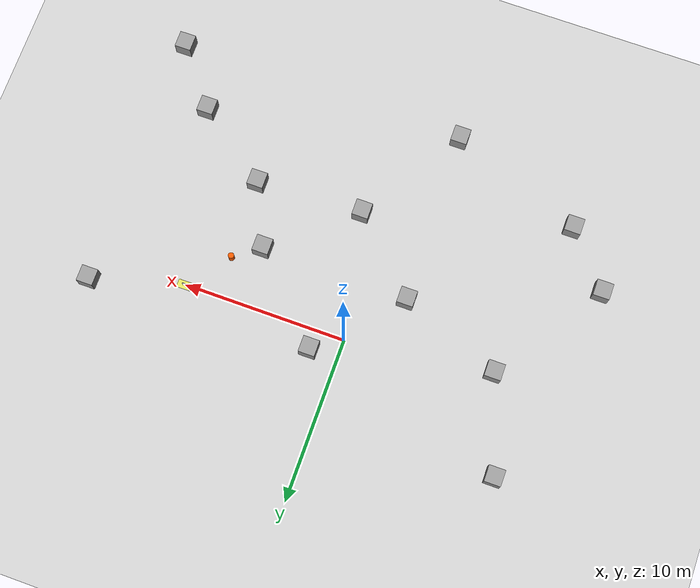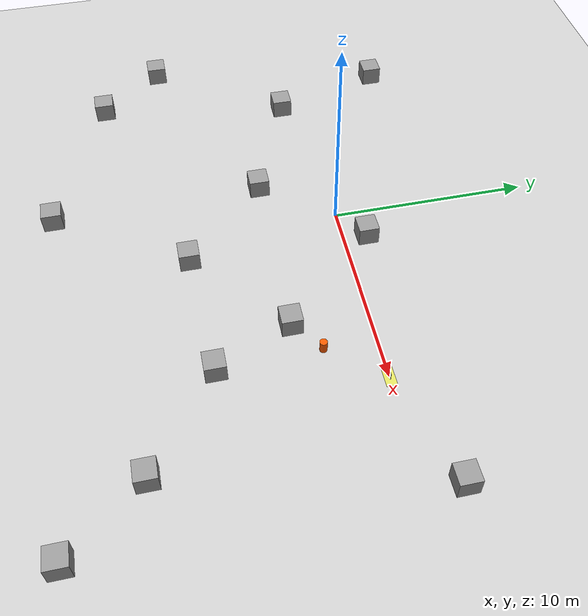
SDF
<sdf version="1.7">
 <world name="my_world">
  <model name="ground_plane">
   <static>1</static>
   <link name="link">
    <collision name="collision">
     <geometry><plane><normal>0 0 1</normal><size>100 100</size></plane></geometry>
     <surface>
      <contact><collide_bitmask>65535</collide_bitmask></contact>
      <friction><ode><mu>100</mu><mu2>50</mu2></ode></friction>
     </surface>
    </collision>
    <visual name="visual">
     <cast_shadows>0</cast_shadows>
     <geometry><plane><normal>0 0 1</normal><size>100 100</size></plane></geometry>
     <material>
      <script><uri>file://media/materials/scripts/gazebo.material</uri><name>Gazebo/Grey</name></script>
     </material>
    </visual>
   </link>
  </model>
  <model name="zone_b">
   <static>1</static>
   <pose>10 0 0.01 0 -0 0</pose>
   <link name="base">
    <visual name="visual">
     <geometry><box><size>1 0.5 0.02</size></box></geometry>
     <material><ambient>1 1 0 0.5</ambient><diffuse>1 1 0 0.5</diffuse></material>
    </visual>
   </link>
   <link name="letter_B_vertical_stroke">
    <pose>-0.1 0 0.2 0 -0 0</pose>
    <visual name="v">
     <geometry><box><size>0.04 0.04 0.4</size></box></geometry>
     <material><ambient>0 0 0 1</ambient><diffuse>0 0 0 1</diffuse></material>
    </visual>
   </link>
   <link name="letter_B_top_horizontal">
    <pose>0.05 0 0.38 0 -0 0</pose>
    <visual name="v">
     <geometry><box><size>0.25 0.04 0.04</size></box></geometry>
     <material><ambient>0 0 0 1</ambient><diffuse>0 0 0 1</diffuse></material>
    </visual>
   </link>
   <link name="letter_B_middle_horizontal">
    <pose>0.05 0 0.2 0 -0 0</pose>
    <visual name="v">
     <geometry><box><size>0.25 0.04 0.04</size></box></geometry>
     <material><ambient>0 0 0 1</ambient><diffuse>0 0 0 1</diffuse></material>
    </visual>
   </link>
   <link name="letter_B_bottom_horizontal">
    <pose>0.05 0 0.02 0 -0 0</pose>
    <visual name="v">
     <geometry><box><size>0.25 0.04 0.04</size></box></geometry>
     <material><ambient>0 0 0 1</ambient><diffuse>0 0 0 1</diffuse></material>
    </visual>
   </link>
   <link name="letter_B_top_vertical_stroke">
    <pose>0.15 0 0.29 0 -0 0</pose>
    <visual name="v">
     <geometry><box><size>0.04 0.04 0.2</size></box></geometry>
     <material><ambient>0 0 0 1</ambient><diffuse>0 0 0 1</diffuse></material>
    </visual>
   </link>
   <link name="letter_B_bottom_vertical_stroke">
    <pose>0.15 0 0.11 0 -0 0</pose>
    <visual name="v">
     <geometry><box><size>0.04 0.04 0.2</size></box></geometry>
     <material><ambient>0 0 0 1</ambient><diffuse>0 0 0 1</diffuse></material>
    </visual>
   </link>
  </model>
  <model name="Untitled">
   <link name="link_0">
    <inertial>
     <mass>1</mass>
     <inertia>
      <ixx>0.166667</ixx>
      <ixy>0</ixy>
      <ixz>0</ixz>
      <iyy>0.166667</iyy>
      <iyz>0</iyz>
      <izz>0.166667</izz>
     </inertia>
    </inertial>
    <pose>-11.7361 10.376 0 0 -0 0</pose>
    <visual name="visual">
     <geometry><box><size>1 1 1</size></box></geometry>
     <material>
      <lighting>1</lighting>
      <script><uri>file://media/materials/scripts/gazebo.material</uri><name>Gazebo/Grey</name></script>
      <shader type="pixel"/>
     </material>
    </visual>
    <collision name="collision">
     <geometry><box><size>1 1 1</size></box></geometry>
     <surface>
      <friction>
       <ode><mu>1</mu><mu2>1</mu2><fdir1>0 0 0</fdir1><slip1>0</slip1><slip2>0</slip2></ode>
       <torsional>
        <coefficient>1</coefficient>
        <patch_radius>0</patch_radius>
        <surface_radius>0</surface_radius>
        <use_patch_radius>1</use_patch_radius>
        <ode><slip>0</slip></ode>
       </torsional>
      </friction>
      <bounce><restitution_coefficient>0</restitution_coefficient><threshold>1e+06</threshold></bounce>
      <contact>
       <collide_without_contact>0</collide_without_contact>
       <collide_without_contact_bitmask>1</collide_without_contact_bitmask>
       <collide_bitmask>1</collide_bitmask>
       <ode>
        <soft_cfm>0</soft_cfm>
        <soft_erp>0.2</soft_erp>
        <kp>1e+13</kp>
        <kd>1</kd>
        <max_vel>0.01</max_vel>
        <min_depth>0</min_depth>
       </ode>
       <bullet>
        <split_impulse>1</split_impulse>
        <split_impulse_penetration_threshold>-0.01</split_impulse_penetration_threshold>
        <soft_cfm>0</soft_cfm>
        <soft_erp>0.2</soft_erp>
        <kp>1e+13</kp>
        <kd>1</kd>
       </bullet>
      </contact>
     </surface>
    </collision>
   </link>
   <link name="link_1">
    <inertial>
     <mass>1</mass>
     <inertia>
      <ixx>0.166667</ixx>
      <ixy>0</ixy>
      <ixz>0</ixz>
      <iyy>0.166667</iyy>
      <iyz>0</iyz>
      <izz>0.166667</izz>
     </inertia>
    </inertial>
    <pose>-9.86873 4.59948 0 0 -0 0</pose>
    <visual name="visual">
     <geometry><box><size>1 1 1</size></box></geometry>
     <material>
      <lighting>1</lighting>
      <script><uri>file://media/materials/scripts/gazebo.material</uri><name>Gazebo/Grey</name></script>
      <shader type="pixel"/>
     </material>
    </visual>
    <collision name="collision">
     <geometry><box><size>1 1 1</size></box></geometry>
     <surface>
      <friction>
       <ode><mu>1</mu><mu2>1</mu2><fdir1>0 0 0</fdir1><slip1>0</slip1><slip2>0</slip2></ode>
       <torsional>
        <coefficient>1</coefficient>
        <patch_radius>0</patch_radius>
        <surface_radius>0</surface_radius>
        <use_patch_radius>1</use_patch_radius>
        <ode><slip>0</slip></ode>
       </torsional>
      </friction>
      <bounce><restitution_coefficient>0</restitution_coefficient><threshold>1e+06</threshold></bounce>
      <contact>
       <collide_without_contact>0</collide_without_contact>
       <collide_without_contact_bitmask>1</collide_without_contact_bitmask>
       <collide_bitmask>1</collide_bitmask>
       <ode>
        <soft_cfm>0</soft_cfm>
        <soft_erp>0.2</soft_erp>
        <kp>1e+13</kp>
        <kd>1</kd>
        <max_vel>0.01</max_vel>
        <min_depth>0</min_depth>
       </ode>
       <bullet>
        <split_impulse>1</split_impulse>
        <split_impulse_penetration_threshold>-0.01</split_impulse_penetration_threshold>
        <soft_cfm>0</soft_cfm>
        <soft_erp>0.2</soft_erp>
        <kp>1e+13</kp>
        <kd>1</kd>
       </bullet>
      </contact>
     </surface>
    </collision>
   </link>
   <link name="link_10">
    <inertial>
     <mass>1</mass>
     <inertia>
      <ixx>0.166667</ixx>
      <ixy>0</ixy>
      <ixz>0</ixz>
      <iyy>0.166667</iyy>
      <iyz>0</iyz>
      <izz>0.166667</izz>
     </inertia>
    </inertial>
    <pose>11.7248 -5.10078 0 0 -0 0</pose>
    <visual name="visual">
     <geometry><box><size>1 1 1</size></box></geometry>
     <material>
      <lighting>1</lighting>
      <script><uri>file://media/materials/scripts/gazebo.material</uri><name>Gazebo/Grey</name></script>
      <shader type="pixel"/>
     </material>
    </visual>
    <collision name="collision">
     <geometry><box><size>1 1 1</size></box></geometry>
     <surface>
      <friction>
       <ode><mu>1</mu><mu2>1</mu2><fdir1>0 0 0</fdir1><slip1>0</slip1><slip2>0</slip2></ode>
       <torsional>
        <coefficient>1</coefficient>
        <patch_radius>0</patch_radius>
        <surface_radius>0</surface_radius>
        <use_patch_radius>1</use_patch_radius>
        <ode><slip>0</slip></ode>
       </torsional>
      </friction>
      <bounce><restitution_coefficient>0</restitution_coefficient><threshold>1e+06</threshold></bounce>
      <contact>
       <collide_without_contact>0</collide_without_contact>
       <collide_without_contact_bitmask>1</collide_without_contact_bitmask>
       <collide_bitmask>1</collide_bitmask>
       <ode>
        <soft_cfm>0</soft_cfm>
        <soft_erp>0.2</soft_erp>
        <kp>1e+13</kp>
        <kd>1</kd>
        <max_vel>0.01</max_vel>
        <min_depth>0</min_depth>
       </ode>
       <bullet>
        <split_impulse>1</split_impulse>
        <split_impulse_penetration_threshold>-0.01</split_impulse_penetration_threshold>
        <soft_cfm>0</soft_cfm>
        <soft_erp>0.2</soft_erp>
        <kp>1e+13</kp>
        <kd>1</kd>
       </bullet>
      </contact>
     </surface>
    </collision>
   </link>
   <link name="link_11">
    <inertial>
     <mass>1</mass>
     <inertia>
      <ixx>0.166667</ixx>
      <ixy>0</ixy>
      <ixz>0</ixz>
      <iyy>0.166667</iyy>
      <iyz>0</iyz>
      <izz>0.166667</izz>
     </inertia>
    </inertial>
    <pose>-3.47257 -8.45059 0 0 -0 0</pose>
    <visual name="visual">
     <geometry><box><size>1 1 1</size></box></geometry>
     <material>
      <lighting>1</lighting>
      <script><uri>file://media/materials/scripts/gazebo.material</uri><name>Gazebo/Grey</name></script>
      <shader type="pixel"/>
     </material>
    </visual>
    <collision name="collision">
     <geometry><box><size>1 1 1</size></box></geometry>
     <surface>
      <friction>
       <ode><mu>1</mu><mu2>1</mu2><fdir1>0 0 0</fdir1><slip1>0</slip1><slip2>0</slip2></ode>
       <torsional>
        <coefficient>1</coefficient>
        <patch_radius>0</patch_radius>
        <surface_radius>0</surface_radius>
        <use_patch_radius>1</use_patch_radius>
        <ode><slip>0</slip></ode>
       </torsional>
      </friction>
      <bounce><restitution_coefficient>0</restitution_coefficient><threshold>1e+06</threshold></bounce>
      <contact>
       <collide_without_contact>0</collide_without_contact>
       <collide_without_contact_bitmask>1</collide_without_contact_bitmask>
       <collide_bitmask>1</collide_bitmask>
       <ode>
        <soft_cfm>0</soft_cfm>
        <soft_erp>0.2</soft_erp>
        <kp>1e+13</kp>
        <kd>1</kd>
        <max_vel>0.01</max_vel>
        <min_depth>0</min_depth>
       </ode>
       <bullet>
        <split_impulse>1</split_impulse>
        <split_impulse_penetration_threshold>-0.01</split_impulse_penetration_threshold>
        <soft_cfm>0</soft_cfm>
        <soft_erp>0.2</soft_erp>
        <kp>1e+13</kp>
        <kd>1</kd>
       </bullet>
      </contact>
     </surface>
    </collision>
   </link>
   <link name="link_12">
    <inertial>
     <mass>1</mass>
     <inertia>
      <ixx>0.166667</ixx>
      <ixy>0</ixy>
      <ixz>0</ixz>
      <iyy>0.166667</iyy>
      <iyz>0</iyz>
      <izz>0.166667</izz>
     </inertia>
    </inertial>
    <pose>14.5027 -8.59174 0 0 -0 0</pose>
    <visual name="visual">
     <geometry><box><size>1 1 1</size></box></geometry>
     <material>
      <lighting>1</lighting>
      <script><uri>file://media/materials/scripts/gazebo.material</uri><name>Gazebo/Grey</name></script>
      <shader type="pixel"/>
     </material>
    </visual>
    <collision name="collision">
     <geometry><box><size>1 1 1</size></box></geometry>
     <surface>
      <friction>
       <ode><mu>1</mu><mu2>1</mu2><fdir1>0 0 0</fdir1><slip1>0</slip1><slip2>0</slip2></ode>
       <torsional>
        <coefficient>1</coefficient>
        <patch_radius>0</patch_radius>
        <surface_radius>0</surface_radius>
        <use_patch_radius>1</use_patch_radius>
        <ode><slip>0</slip></ode>
       </torsional>
      </friction>
      <bounce><restitution_coefficient>0</restitution_coefficient><threshold>1e+06</threshold></bounce>
      <contact>
       <collide_without_contact>0</collide_without_contact>
       <collide_without_contact_bitmask>1</collide_without_contact_bitmask>
       <collide_bitmask>1</collide_bitmask>
       <ode>
        <soft_cfm>0</soft_cfm>
        <soft_erp>0.2</soft_erp>
        <kp>1e+13</kp>
        <kd>1</kd>
        <max_vel>0.01</max_vel>
        <min_depth>0</min_depth>
       </ode>
       <bullet>
        <split_impulse>1</split_impulse>
        <split_impulse_penetration_threshold>-0.01</split_impulse_penetration_threshold>
        <soft_cfm>0</soft_cfm>
        <soft_erp>0.2</soft_erp>
        <kp>1e+13</kp>
        <kd>1</kd>
       </bullet>
      </contact>
     </surface>
    </collision>
   </link>
   <link name="link_2">
    <inertial>
     <mass>1</mass>
     <inertia>
      <ixx>0.166667</ixx>
      <ixy>0</ixy>
      <ixz>0</ixz>
      <iyy>0.166667</iyy>
      <iyz>0</iyz>
      <izz>0.166667</izz>
     </inertia>
    </inertial>
    <pose>0.764529 6.87658 0 0 -0 0</pose>
    <visual name="visual">
     <geometry><box><size>1 1 1</size></box></geometry>
     <material>
      <lighting>1</lighting>
      <script><uri>file://media/materials/scripts/gazebo.material</uri><name>Gazebo/Grey</name></script>
      <shader type="pixel"/>
     </material>
    </visual>
    <collision name="collision">
     <geometry><box><size>1 1 1</size></box></geometry>
     <surface>
      <friction>
       <ode><mu>1</mu><mu2>1</mu2><fdir1>0 0 0</fdir1><slip1>0</slip1><slip2>0</slip2></ode>
       <torsional>
        <coefficient>1</coefficient>
        <patch_radius>0</patch_radius>
        <surface_radius>0</surface_radius>
        <use_patch_radius>1</use_patch_radius>
        <ode><slip>0</slip></ode>
       </torsional>
      </friction>
      <bounce><restitution_coefficient>0</restitution_coefficient><threshold>1e+06</threshold></bounce>
      <contact>
       <collide_without_contact>0</collide_without_contact>
       <collide_without_contact_bitmask>1</collide_without_contact_bitmask>
       <collide_bitmask>1</collide_bitmask>
       <ode>
        <soft_cfm>0</soft_cfm>
        <soft_erp>0.2</soft_erp>
        <kp>1e+13</kp>
        <kd>1</kd>
        <max_vel>0.01</max_vel>
        <min_depth>0</min_depth>
       </ode>
       <bullet>
        <split_impulse>1</split_impulse>
        <split_impulse_penetration_threshold>-0.01</split_impulse_penetration_threshold>
        <soft_cfm>0</soft_cfm>
        <soft_erp>0.2</soft_erp>
        <kp>1e+13</kp>
        <kd>1</kd>
       </bullet>
      </contact>
     </surface>
    </collision>
   </link>
   <link name="link_3">
    <inertial>
     <mass>1</mass>
     <inertia>
      <ixx>0.166667</ixx>
      <ixy>0</ixy>
      <ixz>0</ixz>
      <iyy>0.166667</iyy>
      <iyz>0</iyz>
      <izz>0.166667</izz>
     </inertia>
    </inertial>
    <pose>14.5365 7.25535 0 0 -0 0</pose>
    <visual name="visual">
     <geometry><box><size>1 1 1</size></box></geometry>
     <material>
      <lighting>1</lighting>
      <script><uri>file://media/materials/scripts/gazebo.material</uri><name>Gazebo/Grey</name></script>
      <shader type="pixel"/>
     </material>
    </visual>
    <collision name="collision">
     <geometry><box><size>1 1 1</size></box></geometry>
     <surface>
      <friction>
       <ode><mu>1</mu><mu2>1</mu2><fdir1>0 0 0</fdir1><slip1>0</slip1><slip2>0</slip2></ode>
       <torsional>
        <coefficient>1</coefficient>
        <patch_radius>0</patch_radius>
        <surface_radius>0</surface_radius>
        <use_patch_radius>1</use_patch_radius>
        <ode><slip>0</slip></ode>
       </torsional>
      </friction>
      <bounce><restitution_coefficient>0</restitution_coefficient><threshold>1e+06</threshold></bounce>
      <contact>
       <collide_without_contact>0</collide_without_contact>
       <collide_without_contact_bitmask>1</collide_without_contact_bitmask>
       <collide_bitmask>1</collide_bitmask>
       <ode>
        <soft_cfm>0</soft_cfm>
        <soft_erp>0.2</soft_erp>
        <kp>1e+13</kp>
        <kd>1</kd>
        <max_vel>0.01</max_vel>
        <min_depth>0</min_depth>
       </ode>
       <bullet>
        <split_impulse>1</split_impulse>
        <split_impulse_penetration_threshold>-0.01</split_impulse_penetration_threshold>
        <soft_cfm>0</soft_cfm>
        <soft_erp>0.2</soft_erp>
        <kp>1e+13</kp>
        <kd>1</kd>
       </bullet>
      </contact>
     </surface>
    </collision>
   </link>
   <link name="link_4">
    <inertial>
     <mass>1</mass>
     <inertia>
      <ixx>0.166667</ixx>
      <ixy>0</ixy>
      <ixz>0</ixz>
      <iyy>0.166667</iyy>
      <iyz>0</iyz>
      <izz>0.166667</izz>
     </inertia>
    </inertial>
    <pose>-3.6643 2.16941 0 0 -0 0</pose>
    <visual name="visual">
     <geometry><box><size>1 1 1</size></box></geometry>
     <material>
      <lighting>1</lighting>
      <script><uri>file://media/materials/scripts/gazebo.material</uri><name>Gazebo/Grey</name></script>
      <shader type="pixel"/>
     </material>
    </visual>
    <collision name="collision">
     <geometry><box><size>1 1 1</size></box></geometry>
     <surface>
      <friction>
       <ode><mu>1</mu><mu2>1</mu2><fdir1>0 0 0</fdir1><slip1>0</slip1><slip2>0</slip2></ode>
       <torsional>
        <coefficient>1</coefficient>
        <patch_radius>0</patch_radius>
        <surface_radius>0</surface_radius>
        <use_patch_radius>1</use_patch_radius>
        <ode><slip>0</slip></ode>
       </torsional>
      </friction>
      <bounce><restitution_coefficient>0</restitution_coefficient><threshold>1e+06</threshold></bounce>
      <contact>
       <collide_without_contact>0</collide_without_contact>
       <collide_without_contact_bitmask>1</collide_without_contact_bitmask>
       <collide_bitmask>1</collide_bitmask>
       <ode>
        <soft_cfm>0</soft_cfm>
        <soft_erp>0.2</soft_erp>
        <kp>1e+13</kp>
        <kd>1</kd>
        <max_vel>0.01</max_vel>
        <min_depth>0</min_depth>
       </ode>
       <bullet>
        <split_impulse>1</split_impulse>
        <split_impulse_penetration_threshold>-0.01</split_impulse_penetration_threshold>
        <soft_cfm>0</soft_cfm>
        <soft_erp>0.2</soft_erp>
        <kp>1e+13</kp>
        <kd>1</kd>
       </bullet>
      </contact>
     </surface>
    </collision>
   </link>
   <link name="link_5">
    <inertial>
     <mass>1</mass>
     <inertia>
      <ixx>0.166667</ixx>
      <ixy>0</ixy>
      <ixz>0</ixz>
      <iyy>0.166667</iyy>
      <iyz>0</iyz>
      <izz>0.166667</izz>
     </inertia>
    </inertial>
    <pose>5.45574 2.04349 0 0 -0 0</pose>
    <visual name="visual">
     <geometry><box><size>1 1 1</size></box></geometry>
     <material>
      <lighting>1</lighting>
      <script><uri>file://media/materials/scripts/gazebo.material</uri><name>Gazebo/Grey</name></script>
      <shader type="pixel"/>
     </material>
    </visual>
    <collision name="collision">
     <geometry><box><size>1 1 1</size></box></geometry>
     <surface>
      <friction>
       <ode><mu>1</mu><mu2>1</mu2><fdir1>0 0 0</fdir1><slip1>0</slip1><slip2>0</slip2></ode>
       <torsional>
        <coefficient>1</coefficient>
        <patch_radius>0</patch_radius>
        <surface_radius>0</surface_radius>
        <use_patch_radius>1</use_patch_radius>
        <ode><slip>0</slip></ode>
       </torsional>
      </friction>
      <bounce><restitution_coefficient>0</restitution_coefficient><threshold>1e+06</threshold></bounce>
      <contact>
       <collide_without_contact>0</collide_without_contact>
       <collide_without_contact_bitmask>1</collide_without_contact_bitmask>
       <collide_bitmask>1</collide_bitmask>
       <ode>
        <soft_cfm>0</soft_cfm>
        <soft_erp>0.2</soft_erp>
        <kp>1e+13</kp>
        <kd>1</kd>
        <max_vel>0.01</max_vel>
        <min_depth>0</min_depth>
       </ode>
       <bullet>
        <split_impulse>1</split_impulse>
        <split_impulse_penetration_threshold>-0.01</split_impulse_penetration_threshold>
        <soft_cfm>0</soft_cfm>
        <soft_erp>0.2</soft_erp>
        <kp>1e+13</kp>
        <kd>1</kd>
       </bullet>
      </contact>
     </surface>
    </collision>
   </link>
   <link name="link_6">
    <inertial>
     <mass>1</mass>
     <inertia>
      <ixx>0.166667</ixx>
      <ixy>0</ixy>
      <ixz>0</ixz>
      <iyy>0.166667</iyy>
      <iyz>0</iyz>
      <izz>0.166667</izz>
     </inertia>
    </inertial>
    <pose>7.19325 -1.71375 0 0 -0 0</pose>
    <visual name="visual">
     <geometry><box><size>1 1 1</size></box></geometry>
     <material>
      <lighting>1</lighting>
      <script><uri>file://media/materials/scripts/gazebo.material</uri><name>Gazebo/Grey</name></script>
      <shader type="pixel"/>
     </material>
    </visual>
    <collision name="collision">
     <geometry><box><size>1 1 1</size></box></geometry>
     <surface>
      <friction>
       <ode><mu>1</mu><mu2>1</mu2><fdir1>0 0 0</fdir1><slip1>0</slip1><slip2>0</slip2></ode>
       <torsional>
        <coefficient>1</coefficient>
        <patch_radius>0</patch_radius>
        <surface_radius>0</surface_radius>
        <use_patch_radius>1</use_patch_radius>
        <ode><slip>0</slip></ode>
       </torsional>
      </friction>
      <bounce><restitution_coefficient>0</restitution_coefficient><threshold>1e+06</threshold></bounce>
      <contact>
       <collide_without_contact>0</collide_without_contact>
       <collide_without_contact_bitmask>1</collide_without_contact_bitmask>
       <collide_bitmask>1</collide_bitmask>
       <ode>
        <soft_cfm>0</soft_cfm>
        <soft_erp>0.2</soft_erp>
        <kp>1e+13</kp>
        <kd>1</kd>
        <max_vel>0.01</max_vel>
        <min_depth>0</min_depth>
       </ode>
       <bullet>
        <split_impulse>1</split_impulse>
        <split_impulse_penetration_threshold>-0.01</split_impulse_penetration_threshold>
        <soft_cfm>0</soft_cfm>
        <soft_erp>0.2</soft_erp>
        <kp>1e+13</kp>
        <kd>1</kd>
       </bullet>
      </contact>
     </surface>
    </collision>
   </link>
   <link name="link_7">
    <inertial>
     <mass>1</mass>
     <inertia>
      <ixx>0.166667</ixx>
      <ixy>0</ixy>
      <ixz>0</ixz>
      <iyy>0.166667</iyy>
      <iyz>0</iyz>
      <izz>0.166667</izz>
     </inertia>
    </inertial>
    <pose>0.605863 -2.01965 0 0 -0 0</pose>
    <visual name="visual">
     <geometry><box><size>1 1 1</size></box></geometry>
     <material>
      <lighting>1</lighting>
      <script><uri>file://media/materials/scripts/gazebo.material</uri><name>Gazebo/Grey</name></script>
      <shader type="pixel"/>
     </material>
    </visual>
    <collision name="collision">
     <geometry><box><size>1 1 1</size></box></geometry>
     <surface>
      <friction>
       <ode><mu>1</mu><mu2>1</mu2><fdir1>0 0 0</fdir1><slip1>0</slip1><slip2>0</slip2></ode>
       <torsional>
        <coefficient>1</coefficient>
        <patch_radius>0</patch_radius>
        <surface_radius>0</surface_radius>
        <use_patch_radius>1</use_patch_radius>
        <ode><slip>0</slip></ode>
       </torsional>
      </friction>
      <bounce><restitution_coefficient>0</restitution_coefficient><threshold>1e+06</threshold></bounce>
      <contact>
       <collide_without_contact>0</collide_without_contact>
       <collide_without_contact_bitmask>1</collide_without_contact_bitmask>
       <collide_bitmask>1</collide_bitmask>
       <ode>
        <soft_cfm>0</soft_cfm>
        <soft_erp>0.2</soft_erp>
        <kp>1e+13</kp>
        <kd>1</kd>
        <max_vel>0.01</max_vel>
        <min_depth>0</min_depth>
       </ode>
       <bullet>
        <split_impulse>1</split_impulse>
        <split_impulse_penetration_threshold>-0.01</split_impulse_penetration_threshold>
        <soft_cfm>0</soft_cfm>
        <soft_erp>0.2</soft_erp>
        <kp>1e+13</kp>
        <kd>1</kd>
       </bullet>
      </contact>
     </surface>
    </collision>
   </link>
   <link name="link_8">
    <inertial>
     <mass>1</mass>
     <inertia>
      <ixx>0.166667</ixx>
      <ixy>0</ixy>
      <ixz>0</ixz>
      <iyy>0.166667</iyy>
      <iyz>0</iyz>
      <izz>0.166667</izz>
     </inertia>
    </inertial>
    <pose>-14.4058 -2.10305 0 0 -0 0</pose>
    <visual name="visual">
     <geometry><box><size>1 1 1</size></box></geometry>
     <material>
      <lighting>1</lighting>
      <script><uri>file://media/materials/scripts/gazebo.material</uri><name>Gazebo/Grey</name></script>
      <shader type="pixel"/>
     </material>
    </visual>
    <collision name="collision">
     <geometry><box><size>1 1 1</size></box></geometry>
     <surface>
      <friction>
       <ode><mu>1</mu><mu2>1</mu2><fdir1>0 0 0</fdir1><slip1>0</slip1><slip2>0</slip2></ode>
       <torsional>
        <coefficient>1</coefficient>
        <patch_radius>0</patch_radius>
        <surface_radius>0</surface_radius>
        <use_patch_radius>1</use_patch_radius>
        <ode><slip>0</slip></ode>
       </torsional>
      </friction>
      <bounce><restitution_coefficient>0</restitution_coefficient><threshold>1e+06</threshold></bounce>
      <contact>
       <collide_without_contact>0</collide_without_contact>
       <collide_without_contact_bitmask>1</collide_without_contact_bitmask>
       <collide_bitmask>1</collide_bitmask>
       <ode>
        <soft_cfm>0</soft_cfm>
        <soft_erp>0.2</soft_erp>
        <kp>1e+13</kp>
        <kd>1</kd>
        <max_vel>0.01</max_vel>
        <min_depth>0</min_depth>
       </ode>
       <bullet>
        <split_impulse>1</split_impulse>
        <split_impulse_penetration_threshold>-0.01</split_impulse_penetration_threshold>
        <soft_cfm>0</soft_cfm>
        <soft_erp>0.2</soft_erp>
        <kp>1e+13</kp>
        <kd>1</kd>
       </bullet>
      </contact>
     </surface>
    </collision>
   </link>
   <link name="link_9">
    <inertial>
     <mass>1</mass>
     <inertia>
      <ixx>0.166667</ixx>
      <ixy>0</ixy>
      <ixz>0</ixz>
      <iyy>0.166667</iyy>
      <iyz>0</iyz>
      <izz>0.166667</izz>
     </inertia>
    </inertial>
    <pose>-11.6359 -5.34072 0 0 -0 0</pose>
    <visual name="visual">
     <geometry><box><size>1 1 1</size></box></geometry>
     <material>
      <lighting>1</lighting>
      <script><uri>file://media/materials/scripts/gazebo.material</uri><name>Gazebo/Grey</name></script>
      <shader type="pixel"/>
     </material>
    </visual>
    <collision name="collision">
     <geometry><box><size>1 1 1</size></box></geometry>
     <surface>
      <friction>
       <ode><mu>1</mu><mu2>1</mu2><fdir1>0 0 0</fdir1><slip1>0</slip1><slip2>0</slip2></ode>
       <torsional>
        <coefficient>1</coefficient>
        <patch_radius>0</patch_radius>
        <surface_radius>0</surface_radius>
        <use_patch_radius>1</use_patch_radius>
        <ode><slip>0</slip></ode>
       </torsional>
      </friction>
      <bounce><restitution_coefficient>0</restitution_coefficient><threshold>1e+06</threshold></bounce>
      <contact>
       <collide_without_contact>0</collide_without_contact>
       <collide_without_contact_bitmask>1</collide_without_contact_bitmask>
       <collide_bitmask>1</collide_bitmask>
       <ode>
        <soft_cfm>0</soft_cfm>
        <soft_erp>0.2</soft_erp>
        <kp>1e+13</kp>
        <kd>1</kd>
        <max_vel>0.01</max_vel>
        <min_depth>0</min_depth>
       </ode>
       <bullet>
        <split_impulse>1</split_impulse>
        <split_impulse_penetration_threshold>-0.01</split_impulse_penetration_threshold>
        <soft_cfm>0</soft_cfm>
        <soft_erp>0.2</soft_erp>
        <kp>1e+13</kp>
        <kd>1</kd>
       </bullet>
      </contact>
     </surface>
    </collision>
   </link>
   <static>0</static>
   <pose>0.968798 -5.71233 0.5 0 -0 0</pose>
  </model>
  <model name="competition_moving_obstacle_3">
   <static>false</static>
   <pose>8.0 -2.5 0.30 0 0 0</pose>
   <link name="body">
    <kinematic>true</kinematic>
    <gravity>false</gravity>
    <inertial>
     <mass>1.0</mass>
     <inertia><ixx>0.0381</ixx><ixy>0</ixy><ixz>0</ixz><iyy>0.0381</iyy><iyz>0</iyz><izz>0.0162</izz></inertia>
    </inertial>
    <collision name="collision">
     <geometry><cylinder><radius>0.18</radius><length>0.60</length></cylinder></geometry>
     <surface><friction><ode><mu>0.8</mu><mu2>0.8</mu2></ode></friction></surface>
    </collision>
    <visual name="visual">
     <geometry><cylinder><radius>0.18</radius><length>0.60</length></cylinder></geometry>
     <material><ambient>1.0 0.35 0.0 1</ambient><diffuse>1.0 0.35 0.0 1</diffuse></material>
    </visual>
   </link>
  </model>
  <model name="red_cube_1_anchor"><static>true</static><pose>0 0 -1 0 0 0</pose><link name="link"/></model>
  <model name="red_cube_2_anchor"><static>true</static><pose>0 0 -1 0 0 0</pose><link name="link"/></model>
  <model name="red_cube_3_anchor"><static>true</static><pose>0 0 -1 0 0 0</pose><link name="link"/></model>
  <model name="red_cube_4_anchor"><static>true</static><pose>0 0 -1 0 0 0</pose><link name="link"/></model>
  <model name="red_cube_5_anchor"><static>true</static><pose>0 0 -1 0 0 0</pose><link name="link"/></model>
  <model name="blue_cube_1_anchor"><static>true</static><pose>0 0 -1 0 0 0</pose><link name="link"/></model>
  <model name="blue_cube_2_anchor"><static>true</static><pose>0 0 -1 0 0 0</pose><link name="link"/></model>
  <model name="blue_cube_3_anchor"><static>true</static><pose>0 0 -1 0 0 0</pose><link name="link"/></model>
  <model name="blue_cube_4_anchor"><static>true</static><pose>0 0 -1 0 0 0</pose><link name="link"/></model>
  <model name="blue_cube_5_anchor"><static>true</static><pose>0 0 -1 0 0 0</pose><link name="link"/></model>
 </world>
</sdf>
